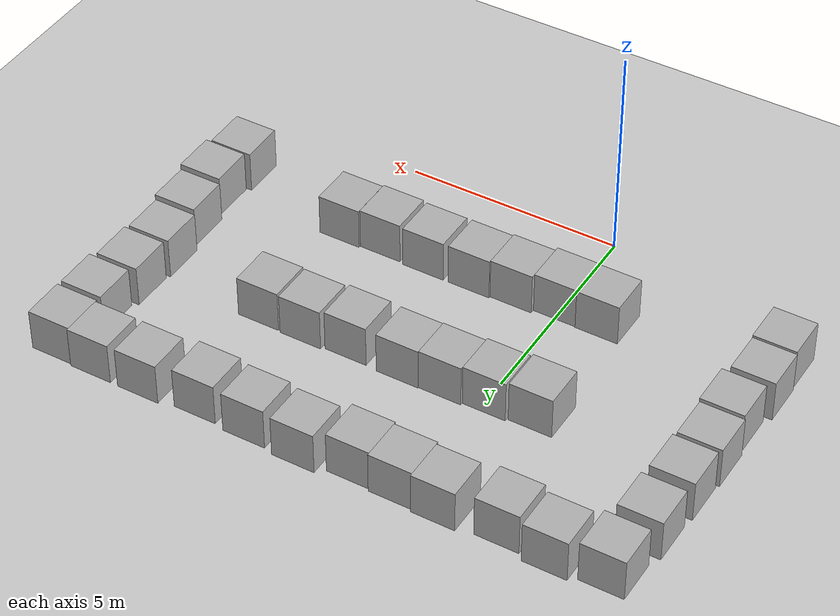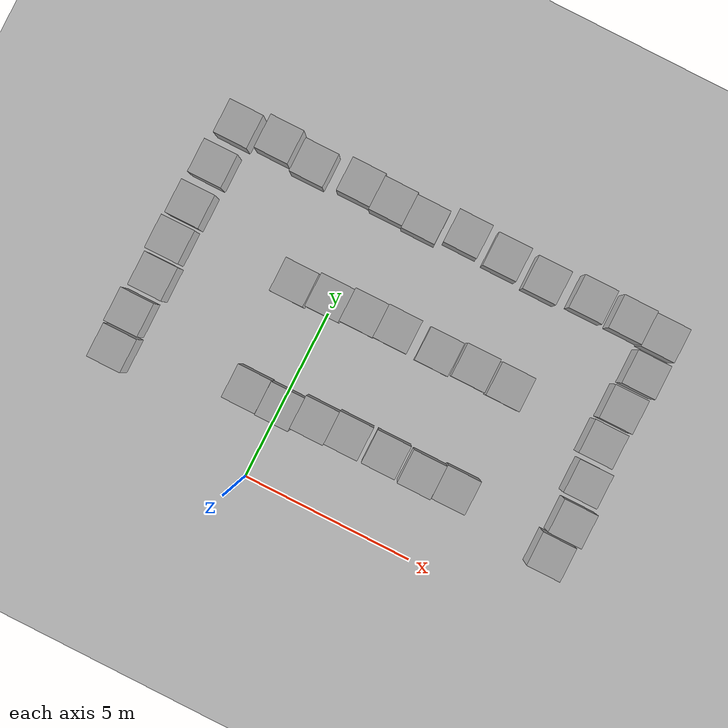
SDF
<sdf version="1.10">
 <world name="supermarket_world">
  <model name="ground_plane">
   <static>true</static>
   <link name="link">
    <collision name="collision">
     <geometry><plane><normal>0 0 1</normal><size>1 1</size></plane></geometry>
    </collision>
    <visual name="visual">
     <geometry><plane><normal>0 0 1</normal><size>100 100</size></plane></geometry>
     <material>
      <ambient>0.800000012 0.800000012 0.800000012 1</ambient>
      <diffuse>0.800000012 0.800000012 0.800000012 1</diffuse>
      <specular>0.800000012 0.800000012 0.800000012 1</specular>
     </material>
    </visual>
    <inertial>
     <mass>1</mass>
     <inertia><ixx>1</ixx><ixy>0</ixy><ixz>0</ixz><iyy>1</iyy><iyz>0</iyz><izz>1</izz></inertia>
    </inertial>
   </link>
  </model>
  <model name="box">
   <pose>8.3739142428703222 8.4991246552368658 0.49999901997068608 2.2348819397861344e-13 2.2642919251834416e-13 -1.3965656928421165e-06</pose>
   <link name="box_link">
    <inertial>
     <inertia><ixx>0.16666</ixx><ixy>0</ixy><ixz>0</ixz><iyy>0.16666</iyy><iyz>0</iyz><izz>0.16666</izz></inertia>
     <mass>1</mass>
    </inertial>
    <collision name="box_collision"><geometry><box><size>1 1 1</size></box></geometry></collision>
    <visual name="box_visual">
     <geometry><box><size>1 1 1</size></box></geometry>
     <material>
      <ambient>0.300000012 0.300000012 0.300000012 1</ambient>
      <diffuse>0.699999988 0.699999988 0.699999988 1</diffuse>
      <specular>1 1 1 1</specular>
     </material>
    </visual>
   </link>
   <static>false</static>
  </model>
  <model name="box_0">
   <pose>8.3599489400429228 7.3887467499537305 0.49999901997068519 -2.3853049526644058e-19 -5.4921349994193821e-17 -1.5029943223181512e-16</pose>
   <link name="box_link">
    <inertial>
     <inertia><ixx>0.16666</ixx><ixy>0</ixy><ixz>0</ixz><iyy>0.16666</iyy><iyz>0</iyz><izz>0.16666</izz></inertia>
     <mass>1</mass>
    </inertial>
    <collision name="box_collision"><geometry><box><size>1 1 1</size></box></geometry></collision>
    <visual name="box_visual">
     <geometry><box><size>1 1 1</size></box></geometry>
     <material>
      <ambient>0.300000012 0.300000012 0.300000012 1</ambient>
      <diffuse>0.699999988 0.699999988 0.699999988 1</diffuse>
      <specular>1 1 1 1</specular>
     </material>
    </visual>
   </link>
   <static>false</static>
  </model>
  <model name="box_1">
   <pose>8.2394322617933682 6.2924777224729969 0.49999901997068691 7.6335864461754263e-19 -5.4851528614217029e-17 -1.4981461280564556e-16</pose>
   <link name="box_link">
    <inertial>
     <inertia><ixx>0.16666</ixx><ixy>0</ixy><ixz>0</ixz><iyy>0.16666</iyy><iyz>0</iyz><izz>0.16666</izz></inertia>
     <mass>1</mass>
    </inertial>
    <collision name="box_collision"><geometry><box><size>1 1 1</size></box></geometry></collision>
    <visual name="box_visual">
     <geometry><box><size>1 1 1</size></box></geometry>
     <material>
      <ambient>0.300000012 0.300000012 0.300000012 1</ambient>
      <diffuse>0.699999988 0.699999988 0.699999988 1</diffuse>
      <specular>1 1 1 1</specular>
     </material>
    </visual>
   </link>
   <static>false</static>
  </model>
  <model name="box_2">
   <pose>8.178507588848813 5.2159218762847974 0.49999901997068685 -4.6991919186985309e-20 -5.5249783236223348e-17 -1.485242425929306e-16</pose>
   <link name="box_link">
    <inertial>
     <inertia><ixx>0.16666</ixx><ixy>0</ixy><ixz>0</ixz><iyy>0.16666</iyy><iyz>0</iyz><izz>0.16666</izz></inertia>
     <mass>1</mass>
    </inertial>
    <collision name="box_collision"><geometry><box><size>1 1 1</size></box></geometry></collision>
    <visual name="box_visual">
     <geometry><box><size>1 1 1</size></box></geometry>
     <material>
      <ambient>0.300000012 0.300000012 0.300000012 1</ambient>
      <diffuse>0.699999988 0.699999988 0.699999988 1</diffuse>
      <specular>1 1 1 1</specular>
     </material>
    </visual>
   </link>
   <static>false</static>
  </model>
  <model name="box_3">
   <pose>8.292137907557251 4.0878692709566833 0.49999901997068602 9.9941326737012215e-19 -5.3861476501093767e-17 1.051353151830816e-16</pose>
   <link name="box_link">
    <inertial>
     <inertia><ixx>0.16666</ixx><ixy>0</ixy><ixz>0</ixz><iyy>0.16666</iyy><iyz>0</iyz><izz>0.16666</izz></inertia>
     <mass>1</mass>
    </inertial>
    <collision name="box_collision"><geometry><box><size>1 1 1</size></box></geometry></collision>
    <visual name="box_visual">
     <geometry><box><size>1 1 1</size></box></geometry>
     <material>
      <ambient>0.300000012 0.300000012 0.300000012 1</ambient>
      <diffuse>0.699999988 0.699999988 0.699999988 1</diffuse>
      <specular>1 1 1 1</specular>
     </material>
    </visual>
   </link>
   <static>false</static>
  </model>
  <model name="box_4">
   <pose>8.4065443264111295 2.9521080647178528 0.49999901997068702 -1.9355377213800176e-19 -5.5068632770077421e-17 -1.4843682263452473e-16</pose>
   <link name="box_link">
    <inertial>
     <inertia><ixx>0.16666</ixx><ixy>0</ixy><ixz>0</ixz><iyy>0.16666</iyy><iyz>0</iyz><izz>0.16666</izz></inertia>
     <mass>1</mass>
    </inertial>
    <collision name="box_collision"><geometry><box><size>1 1 1</size></box></geometry></collision>
    <visual name="box_visual">
     <geometry><box><size>1 1 1</size></box></geometry>
     <material>
      <ambient>0.300000012 0.300000012 0.300000012 1</ambient>
      <diffuse>0.699999988 0.699999988 0.699999988 1</diffuse>
      <specular>1 1 1 1</specular>
     </material>
    </visual>
   </link>
   <static>false</static>
  </model>
  <model name="box_5">
   <pose>8.2921371315712555 1.911037588665371 0.49999901997068602 5.4462563294215104e-17 1.2736077551306983e-19 -1.3626328609519604e-17</pose>
   <link name="box_link">
    <inertial>
     <inertia><ixx>0.16666</ixx><ixy>0</ixy><ixz>0</ixz><iyy>0.16666</iyy><iyz>0</iyz><izz>0.16666</izz></inertia>
     <mass>1</mass>
    </inertial>
    <collision name="box_collision"><geometry><box><size>1 1 1</size></box></geometry></collision>
    <visual name="box_visual">
     <geometry><box><size>1 1 1</size></box></geometry>
     <material>
      <ambient>0.300000012 0.300000012 0.300000012 1</ambient>
      <diffuse>0.699999988 0.699999988 0.699999988 1</diffuse>
      <specular>1 1 1 1</specular>
     </material>
    </visual>
   </link>
   <static>false</static>
  </model>
  <model name="box_22">
   <pose>7.3739143010869102 8.5408454410218173 0.49999901997068646 -2.2687344525636568e-13 -2.2659581979661127e-13 -1.3966704911623266e-06</pose>
   <link name="box_link">
    <inertial>
     <inertia><ixx>0.16666</ixx><ixy>0</ixy><ixz>0</ixz><iyy>0.16666</iyy><iyz>0</iyz><izz>0.16666</izz></inertia>
     <mass>1</mass>
    </inertial>
    <collision name="box_collision"><geometry><box><size>1 1 1</size></box></geometry></collision>
    <visual name="box_visual">
     <geometry><box><size>1 1 1</size></box></geometry>
     <material>
      <ambient>0.300000012 0.300000012 0.300000012 1</ambient>
      <diffuse>0.699999988 0.699999988 0.699999988 1</diffuse>
      <specular>1 1 1 1</specular>
     </material>
    </visual>
   </link>
   <static>false</static>
  </model>
  <model name="box_23">
   <pose>6.1925632018410752 8.5437907844867294 0.49999901997068674 -3.2626995193616972e-19 -5.5331886286950457e-17 -1.481976748723888e-16</pose>
   <link name="box_link">
    <inertial>
     <inertia><ixx>0.16666</ixx><ixy>0</ixy><ixz>0</ixz><iyy>0.16666</iyy><iyz>0</iyz><izz>0.16666</izz></inertia>
     <mass>1</mass>
    </inertial>
    <collision name="box_collision"><geometry><box><size>1 1 1</size></box></geometry></collision>
    <visual name="box_visual">
     <geometry><box><size>1 1 1</size></box></geometry>
     <material>
      <ambient>0.300000012 0.300000012 0.300000012 1</ambient>
      <diffuse>0.699999988 0.699999988 0.699999988 1</diffuse>
      <specular>1 1 1 1</specular>
     </material>
    </visual>
   </link>
   <static>false</static>
  </model>
  <model name="box_24">
   <pose>4.8598208546270243 8.4412858325604621 0.49999901997068563 8.3329809958881114e-19 -5.4611164746740497e-17 -1.7681699454392143e-16</pose>
   <link name="box_link">
    <inertial>
     <inertia><ixx>0.16666</ixx><ixy>0</ixy><ixz>0</ixz><iyy>0.16666</iyy><iyz>0</iyz><izz>0.16666</izz></inertia>
     <mass>1</mass>
    </inertial>
    <collision name="box_collision"><geometry><box><size>1 1 1</size></box></geometry></collision>
    <visual name="box_visual">
     <geometry><box><size>1 1 1</size></box></geometry>
     <material>
      <ambient>0.300000012 0.300000012 0.300000012 1</ambient>
      <diffuse>0.699999988 0.699999988 0.699999988 1</diffuse>
      <specular>1 1 1 1</specular>
     </material>
    </visual>
   </link>
   <static>false</static>
  </model>
  <model name="box_25">
   <pose>3.6288153357328596 8.5131392015221596 0.49999901997068702 7.5795713634588209e-18 4.5318898567860741e-17 -2.557994157569388e-17</pose>
   <link name="box_link">
    <inertial>
     <inertia><ixx>0.16666</ixx><ixy>0</ixy><ixz>0</ixz><iyy>0.16666</iyy><iyz>0</iyz><izz>0.16666</izz></inertia>
     <mass>1</mass>
    </inertial>
    <collision name="box_collision"><geometry><box><size>1 1 1</size></box></geometry></collision>
    <visual name="box_visual">
     <geometry><box><size>1 1 1</size></box></geometry>
     <material>
      <ambient>0.300000012 0.300000012 0.300000012 1</ambient>
      <diffuse>0.699999988 0.699999988 0.699999988 1</diffuse>
      <specular>1 1 1 1</specular>
     </material>
    </visual>
   </link>
   <static>false</static>
  </model>
  <model name="box_26">
   <pose>2.414128419637958 8.5882807453552505 0.49999901997068619 1.882832800260505e-19 -5.4284439081905873e-17 1.0280165663289892e-16</pose>
   <link name="box_link">
    <inertial>
     <inertia><ixx>0.16666</ixx><ixy>0</ixy><ixz>0</ixz><iyy>0.16666</iyy><iyz>0</iyz><izz>0.16666</izz></inertia>
     <mass>1</mass>
    </inertial>
    <collision name="box_collision"><geometry><box><size>1 1 1</size></box></geometry></collision>
    <visual name="box_visual">
     <geometry><box><size>1 1 1</size></box></geometry>
     <material>
      <ambient>0.300000012 0.300000012 0.300000012 1</ambient>
      <diffuse>0.699999988 0.699999988 0.699999988 1</diffuse>
      <specular>1 1 1 1</specular>
     </material>
    </visual>
   </link>
   <static>false</static>
  </model>
  <model name="box_27">
   <pose>1.2348357508965624 8.4158151928005349 0.49999901997068696 2.243737553596623e-13 2.2639404052500012e-13 -2.6295876719116184e-06</pose>
   <link name="box_link">
    <inertial>
     <inertia><ixx>0.16666</ixx><ixy>0</ixy><ixz>0</ixz><iyy>0.16666</iyy><iyz>0</iyz><izz>0.16666</izz></inertia>
     <mass>1</mass>
    </inertial>
    <collision name="box_collision"><geometry><box><size>1 1 1</size></box></geometry></collision>
    <visual name="box_visual">
     <geometry><box><size>1 1 1</size></box></geometry>
     <material>
      <ambient>0.300000012 0.300000012 0.300000012 1</ambient>
      <diffuse>0.699999988 0.699999988 0.699999988 1</diffuse>
      <specular>1 1 1 1</specular>
     </material>
    </visual>
   </link>
   <static>false</static>
  </model>
  <model name="box_28">
   <pose>0.23483588385592666 8.4664159340604375 0.49999901997068619 -2.2379747286635238e-13 -3.5939786468945832e-16 -2.6298016045821032e-06</pose>
   <link name="box_link">
    <inertial>
     <inertia><ixx>0.16666</ixx><ixy>0</ixy><ixz>0</ixz><iyy>0.16666</iyy><iyz>0</iyz><izz>0.16666</izz></inertia>
     <mass>1</mass>
    </inertial>
    <collision name="box_collision"><geometry><box><size>1 1 1</size></box></geometry></collision>
    <visual name="box_visual">
     <geometry><box><size>1 1 1</size></box></geometry>
     <material>
      <ambient>0.300000012 0.300000012 0.300000012 1</ambient>
      <diffuse>0.699999988 0.699999988 0.699999988 1</diffuse>
      <specular>1 1 1 1</specular>
     </material>
    </visual>
   </link>
   <static>false</static>
  </model>
  <model name="box_29">
   <pose>-0.76516396093762096 8.5254571143618723 0.49999901997068585 2.2332113832420632e-13 -2.2126756181625804e-13 -2.6299298669604461e-06</pose>
   <link name="box_link">
    <inertial>
     <inertia><ixx>0.16666</ixx><ixy>0</ixy><ixz>0</ixz><iyy>0.16666</iyy><iyz>0</iyz><izz>0.16666</izz></inertia>
     <mass>1</mass>
    </inertial>
    <collision name="box_collision"><geometry><box><size>1 1 1</size></box></geometry></collision>
    <visual name="box_visual">
     <geometry><box><size>1 1 1</size></box></geometry>
     <material>
      <ambient>0.300000012 0.300000012 0.300000012 1</ambient>
      <diffuse>0.699999988 0.699999988 0.699999988 1</diffuse>
      <specular>1 1 1 1</specular>
     </material>
    </visual>
   </link>
   <static>false</static>
  </model>
  <model name="box_30">
   <pose>-2.1235687335845572 8.4130209101376252 0.4999990199706863 3.5007968245639606e-19 -5.5181599123921202e-17 -1.6787896106127424e-16</pose>
   <link name="box_link">
    <inertial>
     <inertia><ixx>0.16666</ixx><ixy>0</ixy><ixz>0</ixz><iyy>0.16666</iyy><iyz>0</iyz><izz>0.16666</izz></inertia>
     <mass>1</mass>
    </inertial>
    <collision name="box_collision"><geometry><box><size>1 1 1</size></box></geometry></collision>
    <visual name="box_visual">
     <geometry><box><size>1 1 1</size></box></geometry>
     <material>
      <ambient>0.300000012 0.300000012 0.300000012 1</ambient>
      <diffuse>0.699999988 0.699999988 0.699999988 1</diffuse>
      <specular>1 1 1 1</specular>
     </material>
    </visual>
   </link>
   <static>false</static>
  </model>
  <model name="box_31">
   <pose>-3.2457380353510548 8.5503422945629648 0.49999901997068558 1.8513937759678023e-19 -5.477153396656895e-17 -1.915970219005104e-16</pose>
   <link name="box_link">
    <inertial>
     <inertia><ixx>0.16666</ixx><ixy>0</ixy><ixz>0</ixz><iyy>0.16666</iyy><iyz>0</iyz><izz>0.16666</izz></inertia>
     <mass>1</mass>
    </inertial>
    <collision name="box_collision"><geometry><box><size>1 1 1</size></box></geometry></collision>
    <visual name="box_visual">
     <geometry><box><size>1 1 1</size></box></geometry>
     <material>
      <ambient>0.300000012 0.300000012 0.300000012 1</ambient>
      <diffuse>0.699999988 0.699999988 0.699999988 1</diffuse>
      <specular>1 1 1 1</specular>
     </material>
    </visual>
   </link>
   <static>false</static>
  </model>
  <model name="box_32">
   <pose>-4.4038740759789103 8.4232163303823473 0.49999901997068646 5.0403756995073196e-19 -5.4737753209291434e-17 -1.7000615556421608e-16</pose>
   <link name="box_link">
    <inertial>
     <inertia><ixx>0.16666</ixx><ixy>0</ixy><ixz>0</ixz><iyy>0.16666</iyy><iyz>0</iyz><izz>0.16666</izz></inertia>
     <mass>1</mass>
    </inertial>
    <collision name="box_collision"><geometry><box><size>1 1 1</size></box></geometry></collision>
    <visual name="box_visual">
     <geometry><box><size>1 1 1</size></box></geometry>
     <material>
      <ambient>0.300000012 0.300000012 0.300000012 1</ambient>
      <diffuse>0.699999988 0.699999988 0.699999988 1</diffuse>
      <specular>1 1 1 1</specular>
     </material>
    </visual>
   </link>
   <static>false</static>
  </model>
  <model name="box_33">
   <pose>-4.5346122720911666 7.1695975619495185 0.49999901997068569 3.8648680360285155e-19 -5.5332525325915269e-17 -1.9417920242382007e-16</pose>
   <link name="box_link">
    <inertial>
     <inertia><ixx>0.16666</ixx><ixy>0</ixy><ixz>0</ixz><iyy>0.16666</iyy><iyz>0</iyz><izz>0.16666</izz></inertia>
     <mass>1</mass>
    </inertial>
    <collision name="box_collision"><geometry><box><size>1 1 1</size></box></geometry></collision>
    <visual name="box_visual">
     <geometry><box><size>1 1 1</size></box></geometry>
     <material>
      <ambient>0.300000012 0.300000012 0.300000012 1</ambient>
      <diffuse>0.699999988 0.699999988 0.699999988 1</diffuse>
      <specular>1 1 1 1</specular>
     </material>
    </visual>
   </link>
   <static>false</static>
  </model>
  <model name="box_34">
   <pose>-4.5860318022303854 5.9292228999911005 0.49999901997068591 -1.693862562509917e-19 -5.5427729409977203e-17 -1.4859489262982476e-16</pose>
   <link name="box_link">
    <inertial>
     <inertia><ixx>0.16666</ixx><ixy>0</ixy><ixz>0</ixz><iyy>0.16666</iyy><iyz>0</iyz><izz>0.16666</izz></inertia>
     <mass>1</mass>
    </inertial>
    <collision name="box_collision"><geometry><box><size>1 1 1</size></box></geometry></collision>
    <visual name="box_visual">
     <geometry><box><size>1 1 1</size></box></geometry>
     <material>
      <ambient>0.300000012 0.300000012 0.300000012 1</ambient>
      <diffuse>0.699999988 0.699999988 0.699999988 1</diffuse>
      <specular>1 1 1 1</specular>
     </material>
    </visual>
   </link>
   <static>false</static>
  </model>
  <model name="box_35">
   <pose>-4.634849499725485 4.8426725534558299 0.49999901997068519 6.27407247862551e-19 -5.4834488724260098e-17 -1.486163448293188e-16</pose>
   <link name="box_link">
    <inertial>
     <inertia><ixx>0.16666</ixx><ixy>0</ixy><ixz>0</ixz><iyy>0.16666</iyy><iyz>0</iyz><izz>0.16666</izz></inertia>
     <mass>1</mass>
    </inertial>
    <collision name="box_collision"><geometry><box><size>1 1 1</size></box></geometry></collision>
    <visual name="box_visual">
     <geometry><box><size>1 1 1</size></box></geometry>
     <material>
      <ambient>0.300000012 0.300000012 0.300000012 1</ambient>
      <diffuse>0.699999988 0.699999988 0.699999988 1</diffuse>
      <specular>1 1 1 1</specular>
     </material>
    </visual>
   </link>
   <static>false</static>
  </model>
  <model name="box_36">
   <pose>-4.5860313293354551 3.7577922477673056 0.49999901997068669 3.2355593370384763e-19 -5.4387307513345331e-17 -1.4872058211987364e-16</pose>
   <link name="box_link">
    <inertial>
     <inertia><ixx>0.16666</ixx><ixy>0</ixy><ixz>0</ixz><iyy>0.16666</iyy><iyz>0</iyz><izz>0.16666</izz></inertia>
     <mass>1</mass>
    </inertial>
    <collision name="box_collision"><geometry><box><size>1 1 1</size></box></geometry></collision>
    <visual name="box_visual">
     <geometry><box><size>1 1 1</size></box></geometry>
     <material>
      <ambient>0.300000012 0.300000012 0.300000012 1</ambient>
      <diffuse>0.699999988 0.699999988 0.699999988 1</diffuse>
      <specular>1 1 1 1</specular>
     </material>
    </visual>
   </link>
   <static>false</static>
  </model>
  <model name="box_37">
   <pose>-4.7191162121459413 2.6151209833906539 0.49999901997068635 3.8965692117287166e-19 -5.4007414989100813e-17 -1.4851225512174634e-16</pose>
   <link name="box_link">
    <inertial>
     <inertia><ixx>0.16666</ixx><ixy>0</ixy><ixz>0</ixz><iyy>0.16666</iyy><iyz>0</iyz><izz>0.16666</izz></inertia>
     <mass>1</mass>
    </inertial>
    <collision name="box_collision"><geometry><box><size>1 1 1</size></box></geometry></collision>
    <visual name="box_visual">
     <geometry><box><size>1 1 1</size></box></geometry>
     <material>
      <ambient>0.300000012 0.300000012 0.300000012 1</ambient>
      <diffuse>0.699999988 0.699999988 0.699999988 1</diffuse>
      <specular>1 1 1 1</specular>
     </material>
    </visual>
   </link>
   <static>false</static>
  </model>
  <model name="box_38">
   <pose>-4.6903187227906082 1.5559673127993161 0.49999901997068724 -2.2642722456175426e-13 -2.2570826011100643e-13 2.204317318138695e-06</pose>
   <link name="box_link">
    <inertial>
     <inertia><ixx>0.16666</ixx><ixy>0</ixy><ixz>0</ixz><iyy>0.16666</iyy><iyz>0</iyz><izz>0.16666</izz></inertia>
     <mass>1</mass>
    </inertial>
    <collision name="box_collision"><geometry><box><size>1 1 1</size></box></geometry></collision>
    <visual name="box_visual">
     <geometry><box><size>1 1 1</size></box></geometry>
     <material>
      <ambient>0.300000012 0.300000012 0.300000012 1</ambient>
      <diffuse>0.699999988 0.699999988 0.699999988 1</diffuse>
      <specular>1 1 1 1</specular>
     </material>
    </visual>
   </link>
   <static>false</static>
  </model>
  <model name="box_51">
   <pose>4.223380656502993 5.4902399604484993 0.49999901997068663 2.2565803094038219e-13 -2.2642764913315214e-13 6.3974948987297952e-06</pose>
   <link name="box_link">
    <inertial>
     <inertia><ixx>0.16666</ixx><ixy>0</ixy><ixz>0</ixz><iyy>0.16666</iyy><iyz>0</iyz><izz>0.16666</izz></inertia>
     <mass>1</mass>
    </inertial>
    <collision name="box_collision"><geometry><box><size>1 1 1</size></box></geometry></collision>
    <visual name="box_visual">
     <geometry><box><size>1 1 1</size></box></geometry>
     <material>
      <ambient>0.300000012 0.300000012 0.300000012 1</ambient>
      <diffuse>0.699999988 0.699999988 0.699999988 1</diffuse>
      <specular>1 1 1 1</specular>
     </material>
    </visual>
   </link>
   <static>false</static>
  </model>
  <model name="box_50">
   <pose>5.2790513607023151 5.4596847904612744 0.49999901997068602 4.2420670381417347e-19 -5.4393797201254839e-17 -1.4813846757101548e-16</pose>
   <link name="box_link">
    <inertial>
     <inertia><ixx>0.16666</ixx><ixy>0</ixy><ixz>0</ixz><iyy>0.16666</iyy><iyz>0</iyz><izz>0.16666</izz></inertia>
     <mass>1</mass>
    </inertial>
    <collision name="box_collision"><geometry><box><size>1 1 1</size></box></geometry></collision>
    <visual name="box_visual">
     <geometry><box><size>1 1 1</size></box></geometry>
     <material>
      <ambient>0.300000012 0.300000012 0.300000012 1</ambient>
      <diffuse>0.699999988 0.699999988 0.699999988 1</diffuse>
      <specular>1 1 1 1</specular>
     </material>
    </visual>
   </link>
   <static>false</static>
  </model>
  <model name="box_53">
   <pose>1.8890411504982068 5.4631097482704956 0.49999901997068569 -2.2427862975112091e-13 2.2476485267411361e-13 3.4849358706516108e-06</pose>
   <link name="box_link">
    <inertial>
     <inertia><ixx>0.16666</ixx><ixy>0</ixy><ixz>0</ixz><iyy>0.16666</iyy><iyz>0</iyz><izz>0.16666</izz></inertia>
     <mass>1</mass>
    </inertial>
    <collision name="box_collision"><geometry><box><size>1 1 1</size></box></geometry></collision>
    <visual name="box_visual">
     <geometry><box><size>1 1 1</size></box></geometry>
     <material>
      <ambient>0.300000012 0.300000012 0.300000012 1</ambient>
      <diffuse>0.699999988 0.699999988 0.699999988 1</diffuse>
      <specular>1 1 1 1</specular>
     </material>
    </visual>
   </link>
   <static>false</static>
  </model>
  <model name="box_52">
   <pose>3.1521498005627233 5.431127560177754 0.49999901997068635 6.0052834019557551e-19 -5.4693002885214853e-17 -1.481474764833232e-16</pose>
   <link name="box_link">
    <inertial>
     <inertia><ixx>0.16666</ixx><ixy>0</ixy><ixz>0</ixz><iyy>0.16666</iyy><iyz>0</iyz><izz>0.16666</izz></inertia>
     <mass>1</mass>
    </inertial>
    <collision name="box_collision"><geometry><box><size>1 1 1</size></box></geometry></collision>
    <visual name="box_visual">
     <geometry><box><size>1 1 1</size></box></geometry>
     <material>
      <ambient>0.300000012 0.300000012 0.300000012 1</ambient>
      <diffuse>0.699999988 0.699999988 0.699999988 1</diffuse>
      <specular>1 1 1 1</specular>
     </material>
    </visual>
   </link>
   <static>false</static>
  </model>
  <model name="box_54">
   <pose>0.88904121283555437 5.4450261948415672 0.49999901997068719 2.2659659100176266e-13 6.3285651016744262e-15 3.4863396130502117e-06</pose>
   <link name="box_link">
    <inertial>
     <inertia><ixx>0.16666</ixx><ixy>0</ixy><ixz>0</ixz><iyy>0.16666</iyy><iyz>0</iyz><izz>0.16666</izz></inertia>
     <mass>1</mass>
    </inertial>
    <collision name="box_collision"><geometry><box><size>1 1 1</size></box></geometry></collision>
    <visual name="box_visual">
     <geometry><box><size>1 1 1</size></box></geometry>
     <material>
      <ambient>0.300000012 0.300000012 0.300000012 1</ambient>
      <diffuse>0.699999988 0.699999988 0.699999988 1</diffuse>
      <specular>1 1 1 1</specular>
     </material>
    </visual>
   </link>
   <static>false</static>
  </model>
  <model name="box_55">
   <pose>-0.11095858645997497 5.3872580660229961 0.4999990199706858 -2.264294960878644e-13 -2.2331858172679843e-13 3.487896793092777e-06</pose>
   <link name="box_link">
    <inertial>
     <inertia><ixx>0.16666</ixx><ixy>0</ixy><ixz>0</ixz><iyy>0.16666</iyy><iyz>0</iyz><izz>0.16666</izz></inertia>
     <mass>1</mass>
    </inertial>
    <collision name="box_collision"><geometry><box><size>1 1 1</size></box></geometry></collision>
    <visual name="box_visual">
     <geometry><box><size>1 1 1</size></box></geometry>
     <material>
      <ambient>0.300000012 0.300000012 0.300000012 1</ambient>
      <diffuse>0.699999988 0.699999988 0.699999988 1</diffuse>
      <specular>1 1 1 1</specular>
     </material>
    </visual>
   </link>
   <static>false</static>
  </model>
  <model name="box_56">
   <pose>-1.1430051548837303 5.3249071309450322 0.49999901997068524 -3.8168547481012204e-19 -5.5075229479560926e-17 1.477518478476791e-16</pose>
   <link name="box_link">
    <inertial>
     <inertia><ixx>0.16666</ixx><ixy>0</ixy><ixz>0</ixz><iyy>0.16666</iyy><iyz>0</iyz><izz>0.16666</izz></inertia>
     <mass>1</mass>
    </inertial>
    <collision name="box_collision"><geometry><box><size>1 1 1</size></box></geometry></collision>
    <visual name="box_visual">
     <geometry><box><size>1 1 1</size></box></geometry>
     <material>
      <ambient>0.300000012 0.300000012 0.300000012 1</ambient>
      <diffuse>0.699999988 0.699999988 0.699999988 1</diffuse>
      <specular>1 1 1 1</specular>
     </material>
    </visual>
   </link>
   <static>false</static>
  </model>
  <model name="box_57">
   <pose>5.2289414608958023 2.3437955126223815 0.49999901997068685 3.2615486997566764e-19 -5.5092786596525669e-17 -1.4818957507496392e-16</pose>
   <link name="box_link">
    <inertial>
     <inertia><ixx>0.16666</ixx><ixy>0</ixy><ixz>0</ixz><iyy>0.16666</iyy><iyz>0</iyz><izz>0.16666</izz></inertia>
     <mass>1</mass>
    </inertial>
    <collision name="box_collision"><geometry><box><size>1 1 1</size></box></geometry></collision>
    <visual name="box_visual">
     <geometry><box><size>1 1 1</size></box></geometry>
     <material>
      <ambient>0.300000012 0.300000012 0.300000012 1</ambient>
      <diffuse>0.699999988 0.699999988 0.699999988 1</diffuse>
      <specular>1 1 1 1</specular>
     </material>
    </visual>
   </link>
   <static>false</static>
  </model>
  <model name="box_58">
   <pose>4.2273461519511404 2.2976034435689834 0.49999901997068735 6.0687308786395115e-19 -5.4528765903951578e-17 -1.4829312467080861e-16</pose>
   <link name="box_link">
    <inertial>
     <inertia><ixx>0.16666</ixx><ixy>0</ixy><ixz>0</ixz><iyy>0.16666</iyy><iyz>0</iyz><izz>0.16666</izz></inertia>
     <mass>1</mass>
    </inertial>
    <collision name="box_collision"><geometry><box><size>1 1 1</size></box></geometry></collision>
    <visual name="box_visual">
     <geometry><box><size>1 1 1</size></box></geometry>
     <material>
      <ambient>0.300000012 0.300000012 0.300000012 1</ambient>
      <diffuse>0.699999988 0.699999988 0.699999988 1</diffuse>
      <specular>1 1 1 1</specular>
     </material>
    </visual>
   </link>
   <static>false</static>
  </model>
  <model name="box_59">
   <pose>3.1324168411477658 2.3366101728250173 0.49999901997068619 4.8880504937457903e-19 -5.4927097979053674e-17 -1.4845022877006151e-16</pose>
   <link name="box_link">
    <inertial>
     <inertia><ixx>0.16666</ixx><ixy>0</ixy><ixz>0</ixz><iyy>0.16666</iyy><iyz>0</iyz><izz>0.16666</izz></inertia>
     <mass>1</mass>
    </inertial>
    <collision name="box_collision"><geometry><box><size>1 1 1</size></box></geometry></collision>
    <visual name="box_visual">
     <geometry><box><size>1 1 1</size></box></geometry>
     <material>
      <ambient>0.300000012 0.300000012 0.300000012 1</ambient>
      <diffuse>0.699999988 0.699999988 0.699999988 1</diffuse>
      <specular>1 1 1 1</specular>
     </material>
    </visual>
   </link>
   <static>false</static>
  </model>
  <model name="box_60">
   <pose>2.0134884933217321 2.3291516794513134 0.49999901997068674 -2.2481992413122148e-13 2.2426531528086183e-13 1.2163959495338857e-05</pose>
   <link name="box_link">
    <inertial>
     <inertia><ixx>0.16666</ixx><ixy>0</ixy><ixz>0</ixz><iyy>0.16666</iyy><iyz>0</iyz><izz>0.16666</izz></inertia>
     <mass>1</mass>
    </inertial>
    <collision name="box_collision"><geometry><box><size>1 1 1</size></box></geometry></collision>
    <visual name="box_visual">
     <geometry><box><size>1 1 1</size></box></geometry>
     <material>
      <ambient>0.300000012 0.300000012 0.300000012 1</ambient>
      <diffuse>0.699999988 0.699999988 0.699999988 1</diffuse>
      <specular>1 1 1 1</specular>
     </material>
    </visual>
   </link>
   <static>false</static>
  </model>
  <model name="box_61">
   <pose>1.0134890065909803 2.2856779093664001 0.49999901997068674 2.2643085282622196e-13 4.8297558773334535e-15 1.2197843947472167e-05</pose>
   <link name="box_link">
    <inertial>
     <inertia><ixx>0.16666</ixx><ixy>0</ixy><ixz>0</ixz><iyy>0.16666</iyy><iyz>0</iyz><izz>0.16666</izz></inertia>
     <mass>1</mass>
    </inertial>
    <collision name="box_collision"><geometry><box><size>1 1 1</size></box></geometry></collision>
    <visual name="box_visual">
     <geometry><box><size>1 1 1</size></box></geometry>
     <material>
      <ambient>0.300000012 0.300000012 0.300000012 1</ambient>
      <diffuse>0.699999988 0.699999988 0.699999988 1</diffuse>
      <specular>1 1 1 1</specular>
     </material>
    </visual>
   </link>
   <static>false</static>
  </model>
  <model name="box_62">
   <pose>0.013490128755444912 2.1926838093347891 0.49999901997068646 -2.2210662498011058e-13 -2.256652080873117e-13 1.2227542524161741e-05</pose>
   <link name="box_link">
    <inertial>
     <inertia><ixx>0.16666</ixx><ixy>0</ixy><ixz>0</ixz><iyy>0.16666</iyy><iyz>0</iyz><izz>0.16666</izz></inertia>
     <mass>1</mass>
    </inertial>
    <collision name="box_collision"><geometry><box><size>1 1 1</size></box></geometry></collision>
    <visual name="box_visual">
     <geometry><box><size>1 1 1</size></box></geometry>
     <material>
      <ambient>0.300000012 0.300000012 0.300000012 1</ambient>
      <diffuse>0.699999988 0.699999988 0.699999988 1</diffuse>
      <specular>1 1 1 1</specular>
     </material>
    </visual>
   </link>
   <static>false</static>
  </model>
  <model name="box_63">
   <pose>-0.98863982067840084 2.2114483984778848 0.49999901997068597 -5.737651874834542e-20 5.5479244290379579e-17 -2.6253036391776578e-17</pose>
   <link name="box_link">
    <inertial>
     <inertia><ixx>0.16666</ixx><ixy>0</ixy><ixz>0</ixz><iyy>0.16666</iyy><iyz>0</iyz><izz>0.16666</izz></inertia>
     <mass>1</mass>
    </inertial>
    <collision name="box_collision"><geometry><box><size>1 1 1</size></box></geometry></collision>
    <visual name="box_visual">
     <geometry><box><size>1 1 1</size></box></geometry>
     <material>
      <ambient>0.300000012 0.300000012 0.300000012 1</ambient>
      <diffuse>0.699999988 0.699999988 0.699999988 1</diffuse>
      <specular>1 1 1 1</specular>
     </material>
    </visual>
   </link>
   <static>false</static>
  </model>
 </world>
</sdf>
